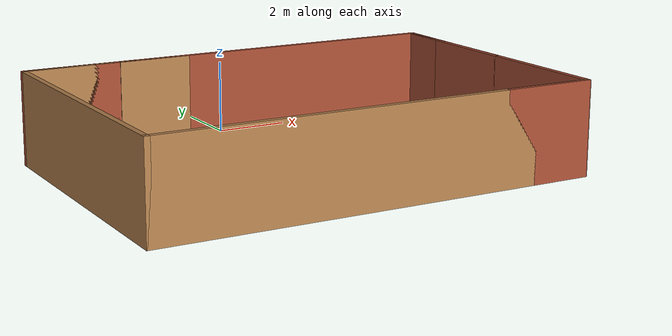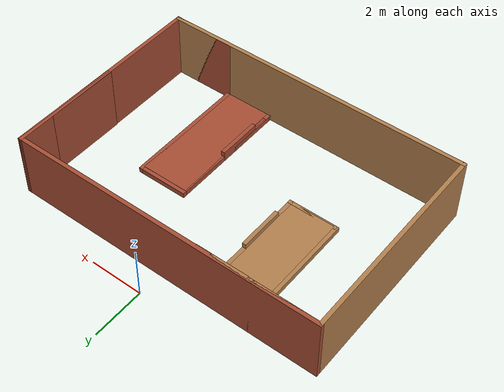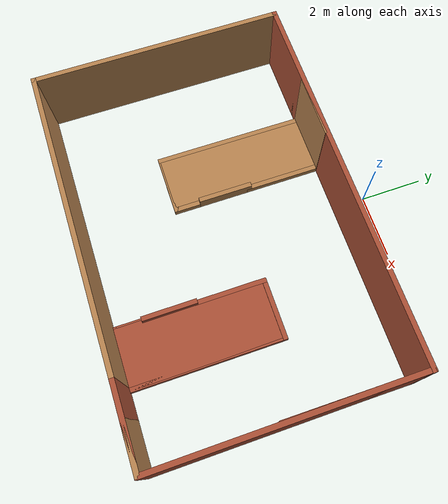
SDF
<?xml version='1.0'?>
<sdf version='1.7'>
  <model name='RMUL'>
    <pose>-0.109727 -4.4625 0 0 -0 0</pose>
    <link name='Wall_0'>
      <collision name='Wall_0_Collision'>
        <geometry>
          <box>
            <size>12.03 0.15 2.5</size>
          </box>
        </geometry>
        <pose>0 0 1.25 0 -0 0</pose>
      </collision>
      <visual name='Wall_0_Visual'>
        <pose>0 0 1.25 0 -0 0</pose>
        <geometry>
          <box>
            <size>12.03 0.15 2.5</size>
          </box>
        </geometry>
        <material>
          <script>
            <uri>file://media/materials/scripts/gazebo.material</uri>
            <name>Gazebo/Bricks</name>
          </script>
          <ambient>1 1 1 1</ambient>
        </material>
        <meta>
          <layer>0</layer>
        </meta>
      </visual>
      <pose>-0.000273 3.4625 0 0 -0 0</pose>
    </link>
    <link name='Wall_136'>
      <collision name='Wall_136_Collision'>
        <geometry>
          <box>
            <size>4.75 1.9 0.2</size>
          </box>
        </geometry>
        <pose>0 0 0.1 0 -0 0</pose>
      </collision>
      <visual name='Wall_136_Visual'>
        <pose>0 0 0.1 0 -0 0</pose>
        <geometry>
          <box>
            <size>4.75 1.9 0.2</size>
          </box>
        </geometry>
        <material>
          <script>
            <uri>file://media/materials/scripts/gazebo.material</uri>
            <name>Gazebo/Bricks</name>
          </script>
          <ambient>1 1 1 1</ambient>
        </material>
        <meta>
          <layer>0</layer>
        </meta>
      </visual>
      <pose>2.63823 -1.9885 0 0 -0 -1.57045</pose>
    </link>
    <link name='Wall_145'>
      <collision name='Wall_145_Collision'>
        <geometry>
          <box>
            <size>1.75 0.15 0.4</size>
          </box>
        </geometry>
        <pose>0 0 0.2 0 -0 0</pose>
      </collision>
      <visual name='Wall_145_Visual'>
        <pose>0 0 0.2 0 -0 0</pose>
        <geometry>
          <box>
            <size>1.75 0.15 0.4</size>
          </box>
        </geometry>
        <material>
          <script>
            <uri>file://media/materials/scripts/gazebo.material</uri>
            <name>Gazebo/Bricks</name>
          </script>
          <ambient>1 1 1 1</ambient>
        </material>
        <meta>
          <layer>0</layer>
        </meta>
      </visual>
      <pose>1.70973 -2.5535 0 0 -0 1.5708</pose>
    </link>
    <link name='Wall_147'>
      <collision name='Wall_147_Collision'>
        <geometry>
          <box>
            <size>2 0.15 2.5</size>
          </box>
        </geometry>
        <pose>0 0 1.25 0 -0 0</pose>
      </collision>
      <visual name='Wall_147_Visual'>
        <pose>0 0 1.25 0 -0 0</pose>
        <geometry>
          <box>
            <size>2 0.15 2.5</size>
          </box>
        </geometry>
        <material>
          <script>
            <uri>file://media/materials/scripts/gazebo.material</uri>
            <name>Gazebo/Wood</name>
          </script>
          <ambient>1 1 1 1</ambient>
        </material>
        <meta>
          <layer>0</layer>
        </meta>
      </visual>
      <pose>-2.33927 3.4495 0 0 -0 0</pose>
    </link>
    <link name='Wall_149'>
      <collision name='Wall_149_Collision'>
        <geometry>
          <box>
            <size>2 0.15 0.2</size>
          </box>
        </geometry>
        <pose>0 0 0.1 0 -0 0</pose>
      </collision>
      <visual name='Wall_149_Visual'>
        <pose>0 0 0.1 0 -0 0</pose>
        <geometry>
          <box>
            <size>2 0.15 0.2</size>
          </box>
        </geometry>
        <material>
          <script>
            <uri>file://media/materials/scripts/gazebo.material</uri>
            <name>Gazebo/Wood</name>
          </script>
          <ambient>1 1 1 1</ambient>
        </material>
        <meta>
          <layer>0</layer>
        </meta>
      </visual>
      <pose>-2.33927 -1.4005 0 0 -0 3.14159</pose>
    </link>
    <link name='Wall_151'>
      <collision name='Wall_151_Collision'>
        <geometry>
          <box>
            <size>4.906 1.7 0.2</size>
          </box>
        </geometry>
        <pose>0 0 0.1 0 -0 0</pose>
      </collision>
      <visual name='Wall_151_Visual'>
        <pose>0 0 0.1 0 -0 0</pose>
        <geometry>
          <box>
            <size>4.906 1.7 0.2</size>
          </box>
        </geometry>
        <material>
          <script>
            <uri>file://media/materials/scripts/gazebo.material</uri>
            <name>Gazebo/Wood</name>
          </script>
          <ambient>1 1 1 1</ambient>
        </material>
        <meta>
          <layer>0</layer>
        </meta>
      </visual>
      <pose>-2.33927 1.0305 0 0 -0 -1.5708</pose>
    </link>
    <link name='Wall_155'>
      <collision name='Wall_155_Collision'>
        <geometry>
          <box>
            <size>1 0.15 0.2</size>
          </box>
        </geometry>
        <pose>0 0 0.1 0 -0 0</pose>
      </collision>
      <visual name='Wall_155_Visual'>
        <pose>0 0 0.1 0 -0 0</pose>
        <geometry>
          <box>
            <size>1 0.15 0.2</size>
          </box>
        </geometry>
        <material>
          <script>
            <uri>file://media/materials/scripts/gazebo.material</uri>
            <name>Gazebo/Wood</name>
          </script>
          <ambient>1 1 1 1</ambient>
        </material>
        <meta>
          <layer>0</layer>
        </meta>
      </visual>
      <pose>-1.41427 -0.9755 0 0 -0 1.5708</pose>
    </link>
    <link name='Wall_157'>
      <collision name='Wall_157_Collision'>
        <geometry>
          <box>
            <size>1.75 0.15 0.4</size>
          </box>
        </geometry>
        <pose>0 0 0.2 0 -0 0</pose>
      </collision>
      <visual name='Wall_157_Visual'>
        <pose>0 0 0.2 0 -0 0</pose>
        <geometry>
          <box>
            <size>1.75 0.15 0.4</size>
          </box>
        </geometry>
        <material>
          <script>
            <uri>file://media/materials/scripts/gazebo.material</uri>
            <name>Gazebo/Wood</name>
          </script>
          <ambient>1 1 1 1</ambient>
        </material>
        <meta>
          <layer>0</layer>
        </meta>
      </visual>
      <pose>-1.41427 0.249501 0 0 -0 1.5708</pose>
    </link>
    <link name='Wall_160'>
      <collision name='Wall_160_Collision'>
        <geometry>
          <box>
            <size>2.55 0.15 0.2</size>
          </box>
        </geometry>
        <pose>0 0 0.1 0 -0 0</pose>
      </collision>
      <visual name='Wall_160_Visual'>
        <pose>0 0 0.1 0 -0 0</pose>
        <geometry>
          <box>
            <size>2.55 0.15 0.2</size>
          </box>
        </geometry>
        <material>
          <script>
            <uri>file://media/materials/scripts/gazebo.material</uri>
            <name>Gazebo/Wood</name>
          </script>
          <ambient>1 1 1 1</ambient>
        </material>
        <meta>
          <layer>0</layer>
        </meta>
      </visual>
      <pose>-1.41427 2.2495 0 0 -0 1.5708</pose>
    </link>
    <link name='Wall_2'>
      <collision name='Wall_2_Collision'>
        <geometry>
          <box>
            <size>4.25 0.15 2.5</size>
          </box>
        </geometry>
        <pose>0 0 1.25 0 -0 0</pose>
      </collision>
      <visual name='Wall_2_Visual'>
        <pose>0 0 1.25 0 -0 0</pose>
        <geometry>
          <box>
            <size>4.25 0.15 2.5</size>
          </box>
        </geometry>
        <material>
          <script>
            <uri>file://media/materials/scripts/gazebo.material</uri>
            <name>Gazebo/Bricks</name>
          </script>
          <ambient>1 1 1 1</ambient>
        </material>
        <meta>
          <layer>0</layer>
        </meta>
      </visual>
      <pose>5.92473 1.4125 0 0 -0 -1.57811</pose>
    </link>
    <link name='Wall_24'>
      <collision name='Wall_24_Collision'>
        <geometry>
          <box>
            <size>2.5 0.15 2.5</size>
          </box>
        </geometry>
        <pose>0 0 1.25 0 -0 0</pose>
      </collision>
      <visual name='Wall_24_Visual'>
        <pose>0 0 1.25 0 -0 0</pose>
        <geometry>
          <box>
            <size>2.5 0.15 2.5</size>
          </box>
        </geometry>
        <material>
          <script>
            <uri>file://media/materials/scripts/gazebo.material</uri>
            <name>Gazebo/Wood</name>
          </script>
          <ambient>1 1 1 1</ambient>
        </material>
        <meta>
          <layer>0</layer>
        </meta>
      </visual>
      <pose>-4.76527 3.4625 0 0 -0 0</pose>
    </link>
    <link name='Wall_27'>
      <collision name='Wall_27_Collision'>
        <geometry>
          <box>
            <size>2.5 0.15 2.5</size>
          </box>
        </geometry>
        <pose>0 0 1.25 0 -0 0</pose>
      </collision>
      <visual name='Wall_27_Visual'>
        <pose>0 0 1.25 0 -0 0</pose>
        <geometry>
          <box>
            <size>2.5 0.15 2.5</size>
          </box>
        </geometry>
        <material>
          <script>
            <uri>file://media/materials/scripts/gazebo.material</uri>
            <name>Gazebo/Bricks</name>
          </script>
          <ambient>1 1 1 1</ambient>
        </material>
        <meta>
          <layer>0</layer>
        </meta>
      </visual>
      <pose>4.73473 -4.3875 0 0 -0 3.14159</pose>
    </link>
    <link name='Wall_28'>
      <collision name='Wall_28_Collision'>
        <geometry>
          <box>
            <size>5 0.15 0.2</size>
          </box>
        </geometry>
        <pose>0 0 0.1 0 -0 0</pose>
      </collision>
      <visual name='Wall_28_Visual'>
        <pose>0 0 0.1 0 -0 0</pose>
        <geometry>
          <box>
            <size>5 0.15 0.2</size>
          </box>
        </geometry>
        <material>
          <script>
            <uri>file://media/materials/scripts/gazebo.material</uri>
            <name>Gazebo/Bricks</name>
          </script>
          <ambient>1 1 1 1</ambient>
        </material>
        <meta>
          <layer>0</layer>
        </meta>
      </visual>
      <pose>3.55973 -1.9625 0 0 -0 1.5708</pose>
    </link>
    <link name='Wall_33'>
      <collision name='Wall_33_Collision'>
        <geometry>
          <box>
            <size>2 0.15 0.2</size>
          </box>
        </geometry>
        <pose>0 0 0.1 0 -0 0</pose>
      </collision>
      <visual name='Wall_33_Visual'>
        <pose>0 0 0.1 0 -0 0</pose>
        <geometry>
          <box>
            <size>2 0.15 0.2</size>
          </box>
        </geometry>
        <material>
          <script>
            <uri>file://media/materials/scripts/gazebo.material</uri>
            <name>Gazebo/Bricks</name>
          </script>
          <ambient>1 1 1 1</ambient>
        </material>
        <meta>
          <layer>0</layer>
        </meta>
      </visual>
      <pose>2.63473 0.462501 0 0 -0 3.14159</pose>
    </link>
    <link name='Wall_34'>
      <collision name='Wall_34_Collision'>
        <geometry>
          <box>
            <size>4.75 0.15 0.2</size>
          </box>
        </geometry>
        <pose>0 0 0.1 0 -0 0</pose>
      </collision>
      <visual name='Wall_34_Visual'>
        <pose>0 0 0.1 0 -0 0</pose>
        <geometry>
          <box>
            <size>4.75 0.15 0.2</size>
          </box>
        </geometry>
        <material>
          <script>
            <uri>file://media/materials/scripts/gazebo.material</uri>
            <name>Gazebo/Bricks</name>
          </script>
          <ambient>1 1 1 1</ambient>
        </material>
        <meta>
          <layer>0</layer>
        </meta>
      </visual>
      <pose>1.70973 -1.8375 0 0 -0 -1.5708</pose>
    </link>
    <link name='Wall_35'>
      <collision name='Wall_35_Collision'>
        <geometry>
          <box>
            <size>0.25 0.15 0.2</size>
          </box>
        </geometry>
        <pose>0 0 0.1 0 -0 0</pose>
      </collision>
      <visual name='Wall_35_Visual'>
        <pose>0 0 0.1 0 -0 0</pose>
        <geometry>
          <box>
            <size>0.25 0.15 0.2</size>
          </box>
        </geometry>
        <material>
          <script>
            <uri>file://media/materials/scripts/gazebo.material</uri>
            <name>Gazebo/Bricks</name>
          </script>
          <ambient>1 1 1 1</ambient>
        </material>
        <meta>
          <layer>0</layer>
        </meta>
      </visual>
      <pose>1.70973 -4.1875 0 0 -0 -1.5708</pose>
    </link>
    <link name='Wall_4'>
      <collision name='Wall_4_Collision'>
        <geometry>
          <box>
            <size>8 0.15 2.5</size>
          </box>
        </geometry>
        <pose>0 0 1.25 0 -0 0</pose>
      </collision>
      <visual name='Wall_4_Visual'>
        <pose>0 0 1.25 0 -0 0</pose>
        <geometry>
          <box>
            <size>8 0.15 2.5</size>
          </box>
        </geometry>
        <material>
          <script>
            <uri>file://media/materials/scripts/gazebo.material</uri>
            <name>Gazebo/Bricks</name>
          </script>
          <ambient>1 1 1 1</ambient>
        </material>
        <meta>
          <layer>0</layer>
        </meta>
      </visual>
      <pose>5.92973 -0.4625 0 0 -0 -1.5708</pose>
    </link>
    <link name='Wall_46'>
      <collision name='Wall_46_Collision'>
        <geometry>
          <box>
            <size>0.25 0.15 2.5</size>
          </box>
        </geometry>
        <pose>0 0 1.25 0 -0 0</pose>
      </collision>
      <visual name='Wall_46_Visual'>
        <pose>0 0 1.25 0 -0 0</pose>
        <geometry>
          <box>
            <size>0.25 0.15 2.5</size>
          </box>
        </geometry>
        <material>
          <script>
            <uri>file://media/materials/scripts/gazebo.material</uri>
            <name>Gazebo/Wood</name>
          </script>
          <ambient>1 1 1 1</ambient>
        </material>
        <meta>
          <layer>0</layer>
        </meta>
      </visual>
      <pose>-3.54027 3.4625 0 0 -0 0</pose>
    </link>
    <link name='Wall_55'>
      <collision name='Wall_55_Collision'>
        <geometry>
          <box>
            <size>5 0.15 0.2</size>
          </box>
        </geometry>
        <pose>0 0 0.1 0 -0 0</pose>
      </collision>
      <visual name='Wall_55_Visual'>
        <pose>0 0 0.1 0 -0 0</pose>
        <geometry>
          <box>
            <size>5 0.15 0.2</size>
          </box>
        </geometry>
        <material>
          <script>
            <uri>file://media/materials/scripts/gazebo.material</uri>
            <name>Gazebo/Wood</name>
          </script>
          <ambient>1 1 1 1</ambient>
        </material>
        <meta>
          <layer>0</layer>
        </meta>
      </visual>
      <pose>-3.26427 1.0245 0 0 -0 -1.5708</pose>
    </link>
    <link name='Wall_6'>
      <collision name='Wall_6_Collision'>
        <geometry>
          <box>
            <size>8 0.15 2.5</size>
          </box>
        </geometry>
        <pose>0 0 1.25 0 -0 0</pose>
      </collision>
      <visual name='Wall_6_Visual'>
        <pose>0 0 1.25 0 -0 0</pose>
        <geometry>
          <box>
            <size>8 0.15 2.5</size>
          </box>
        </geometry>
        <material>
          <script>
            <uri>file://media/materials/scripts/gazebo.material</uri>
            <name>Gazebo/Wood</name>
          </script>
          <ambient>1 1 1 1</ambient>
        </material>
        <meta>
          <layer>0</layer>
        </meta>
      </visual>
      <pose>-5.94027 -0.4625 0 0 -0 -1.5708</pose>
    </link>
    <link name='Wall_7'>
      <collision name='Wall_7_Collision'>
        <geometry>
          <box>
            <size>12 0.15 2.5</size>
          </box>
        </geometry>
        <pose>0 0 1.25 0 -0 0</pose>
      </collision>
      <visual name='Wall_7_Visual'>
        <pose>0 0 1.25 0 -0 0</pose>
        <geometry>
          <box>
            <size>12 0.15 2.5</size>
          </box>
        </geometry>
        <material>
          <script>
            <uri>file://media/materials/scripts/gazebo.material</uri>
            <name>Gazebo/Wood</name>
          </script>
          <ambient>1 1 1 1</ambient>
        </material>
        <meta>
          <layer>0</layer>
        </meta>
      </visual>
      <pose>-0.015273 -4.3875 0 0 -0 0</pose>
    </link>
    <static>1</static>
  </model>
</sdf>
